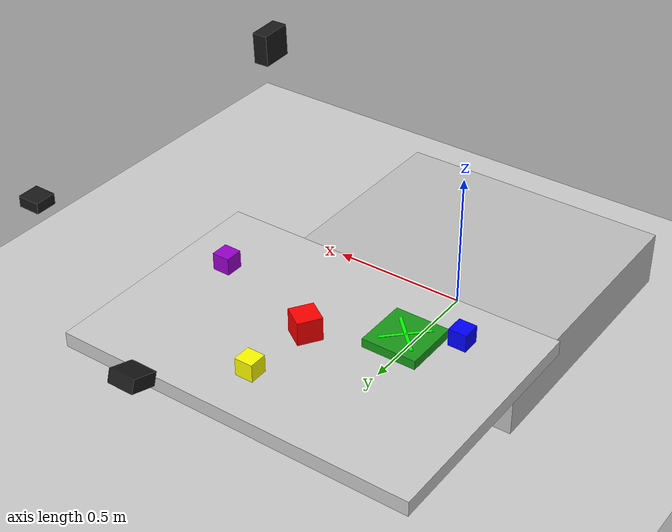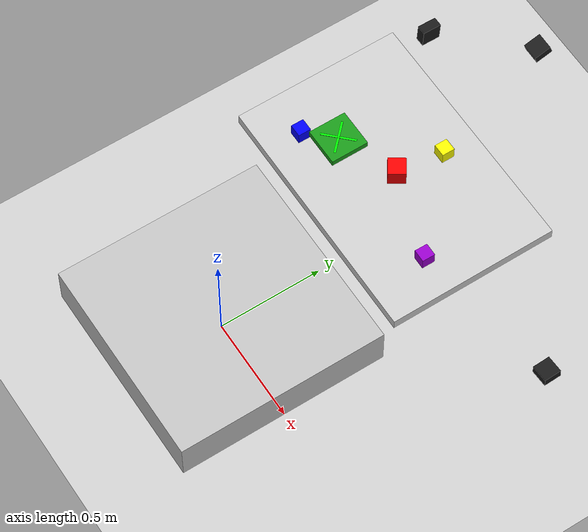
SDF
<sdf version="1.7">
 <world name="smart_arm_world">
  <gravity>0 0 -9.81</gravity>
  <light name="sun" type="directional">
   <pose>0 0 10 0 -0 0</pose>
   <diffuse>0.8 0.8 0.8 1</diffuse>
   <specular>0.2 0.2 0.2 1</specular>
   <attenuation>
    <range>1000</range>
    <constant>0.9</constant>
    <linear>0.01</linear>
    <quadratic>0.001</quadratic>
   </attenuation>
   <direction>-0.5 0.1 -0.9</direction>
   <spot><inner_angle>0</inner_angle><outer_angle>0</outer_angle><falloff>0</falloff></spot>
  </light>
  <model name="ground_plane">
   <static>1</static>
   <link name="link">
    <collision name="collision">
     <geometry><plane><normal>0 0 1</normal><size>100 100</size></plane></geometry>
    </collision>
    <visual name="visual">
     <cast_shadows>0</cast_shadows>
     <geometry><plane><normal>0 0 1</normal><size>100 100</size></plane></geometry>
     <material>
      <script><uri>file://media/materials/scripts/gazebo.material</uri><name>Gazebo/Grey</name></script>
     </material>
    </visual>
   </link>
  </model>
  <model name="robot_pedestal">
   <static>1</static>
   <link name="pedestal_link">
    <pose>0 0 0.1 0 -0 0</pose>
    <collision name="collision"><geometry><box><size>1 1 0.2</size></box></geometry></collision>
    <visual name="visual">
     <geometry><box><size>1 1 0.2</size></box></geometry>
     <material><ambient>0.55 0.55 0.55 1</ambient><diffuse>0.75 0.75 0.75 1</diffuse></material>
    </visual>
   </link>
  </model>
  <model name="work_table">
   <static>1</static>
   <link name="top">
    <pose>-0.030288 0.895696 0.4 0 -0 0</pose>
    <collision name="collision">
     <geometry><box><size>1.2 0.8 0.05</size></box></geometry>
     <surface>
      <friction><ode><mu>3</mu><mu2>3</mu2></ode></friction>
      <contact><ode><kp>1e+06</kp><kd>100</kd><max_vel>0.2</max_vel><min_depth>0.001</min_depth></ode></contact>
     </surface>
    </collision>
    <visual name="visual">
     <geometry><box><size>1.2 0.8 0.05</size></box></geometry>
     <material><ambient>0.65 0.65 0.65 1</ambient><diffuse>0.8 0.8 0.8 1</diffuse></material>
    </visual>
   </link>
  </model>
  <model name="overhead_camera_model">
   <pose>-0.203184 -0 0.232345 0 0.911775 0</pose>
   <static>1</static>
   <link name="overhead_camera_link">
    <pose>0.619308 0.874419 1.18362 0.027906 0.947704 -3.09384</pose>
    <visual name="visual">
     <geometry><box><size>0.08 0.08 0.04</size></box></geometry>
     <material><ambient>0.1 0.1 0.1 1</ambient><diffuse>0.1 0.1 0.1 1</diffuse></material>
    </visual>
    <sensor name="overhead_camera" type="camera">
     <update_rate>30</update_rate>
     <camera>
      <horizontal_fov>1.6</horizontal_fov>
      <image><width>800</width><height>600</height><format>R8G8B8</format></image>
      <clip><near>0.2</near><far>10</far></clip>
     </camera>
     <plugin name="camera_controller" filename="libgazebo_ros_camera.so">
      <alwaysOn>1</alwaysOn>
      <updateRate>30.0</updateRate>
      <cameraName>overhead_camera</cameraName>
      <imageTopicName>image_raw</imageTopicName>
      <frameName>overhead_camera_link</frameName>
     </plugin>
    </sensor>
   </link>
  </model>
  <model name="aux_left_camera_model">
   <pose>-0.078707 0.379621 0.075991 0.312216 -0.406197 -0.589734</pose>
   <static>1</static>
   <link name="aux_left_camera_link">
    <pose>0.25 0.95 1.1 0.15 1.05 -2.45</pose>
    <visual name="visual">
     <geometry><box><size>0.08 0.08 0.04</size></box></geometry>
     <material><ambient>0.1 0.1 0.1 1</ambient><diffuse>0.1 0.1 0.1 1</diffuse></material>
    </visual>
    <sensor name="aux_left_camera" type="camera">
     <update_rate>30</update_rate>
     <camera>
      <horizontal_fov>1.57</horizontal_fov>
      <image><width>800</width><height>600</height><format>R8G8B8</format></image>
      <clip><near>0.2</near><far>10</far></clip>
     </camera>
     <plugin name="aux_left_camera_controller" filename="libgazebo_ros_camera.so">
      <alwaysOn>1</alwaysOn>
      <updateRate>30.0</updateRate>
      <cameraName>aux_left_camera</cameraName>
      <imageTopicName>image_raw</imageTopicName>
      <frameName>aux_left_camera_link</frameName>
     </plugin>
    </sensor>
   </link>
  </model>
  <model name="aux_right_camera_model">
   <pose>1.22022 0.75783 -0.057078 0.563776 0.485538 2.39751</pose>
   <static>1</static>
   <link name="aux_right_camera_link">
    <pose>0.95 0.95 1.1 0.12 1.03 2.53319</pose>
    <visual name="visual">
     <geometry><box><size>0.08 0.08 0.04</size></box></geometry>
     <material><ambient>0.1 0.1 0.1 1</ambient><diffuse>0.1 0.1 0.1 1</diffuse></material>
    </visual>
    <sensor name="aux_right_camera" type="camera">
     <update_rate>30</update_rate>
     <camera>
      <horizontal_fov>1.57</horizontal_fov>
      <image><width>800</width><height>600</height><format>R8G8B8</format></image>
      <clip><near>0.2</near><far>10</far></clip>
     </camera>
     <plugin name="aux_right_camera_controller" filename="libgazebo_ros_camera.so">
      <alwaysOn>1</alwaysOn>
      <updateRate>30.0</updateRate>
      <cameraName>aux_right_camera</cameraName>
      <imageTopicName>image_raw</imageTopicName>
      <frameName>aux_right_camera_link</frameName>
     </plugin>
    </sensor>
   </link>
  </model>
  <model name="blue_cube">
   <pose>0 0 -0.001002 -0 -0 -0</pose>
   <static>0</static>
   <link name="cube_link">
    <pose>-0.403194 0.669364 0.455001 0 -0 0</pose>
    <collision name="collision">
     <geometry><box><size>0.06 0.06 0.06</size></box></geometry>
     <surface>
      <friction><ode><mu>1.5</mu><mu2>1.5</mu2></ode></friction>
      <contact><ode><kp>500000</kp><kd>50</kd><max_vel>0.1</max_vel><min_depth>0.001</min_depth></ode></contact>
     </surface>
    </collision>
    <visual name="visual">
     <geometry><box><size>0.06 0.06 0.06</size></box></geometry>
     <material><ambient>0 0 1 1</ambient><diffuse>0 0 1 1</diffuse></material>
    </visual>
    <inertial>
     <mass>0.15</mass>
     <inertia><ixx>9e-05</ixx><iyy>9e-05</iyy><izz>9e-05</izz><ixy>0</ixy><ixz>0</ixz><iyz>0</iyz></inertia>
    </inertial>
   </link>
  </model>
  <model name="yellow_cube">
   <pose>0 0 -0.001001 0 -0 0</pose>
   <static>0</static>
   <link name="cube_link">
    <pose>0.01246 1.12737 0.455 0 -0 0</pose>
    <collision name="collision">
     <geometry><box><size>0.06 0.06 0.06</size></box></geometry>
     <surface>
      <friction><ode><mu>1.5</mu><mu2>1.5</mu2></ode></friction>
      <contact><ode><kp>500000</kp><kd>50</kd><max_vel>0.1</max_vel><min_depth>0.001</min_depth></ode></contact>
     </surface>
    </collision>
    <visual name="visual">
     <geometry><box><size>0.06 0.06 0.06</size></box></geometry>
     <material><ambient>1 1 0 1</ambient><diffuse>1 1 0 1</diffuse></material>
    </visual>
    <inertial>
     <mass>0.15</mass>
     <inertia><ixx>9e-05</ixx><iyy>9e-05</iyy><izz>9e-05</izz><ixy>0</ixy><ixz>0</ixz><iyz>0</iyz></inertia>
    </inertial>
   </link>
  </model>
  <model name="purple_cube">
   <pose>-0.010357 0.004906 -0.001002 0 -0 -0.011878</pose>
   <static>0</static>
   <link name="cube_link">
    <pose>0.393889 0.766223 0.455001 0 -0 0</pose>
    <collision name="collision">
     <geometry><box><size>0.06 0.06 0.06</size></box></geometry>
     <surface>
      <friction><ode><mu>1.5</mu><mu2>1.5</mu2></ode></friction>
      <contact><ode><kp>500000</kp><kd>50</kd><max_vel>0.1</max_vel><min_depth>0.001</min_depth></ode></contact>
     </surface>
    </collision>
    <visual name="visual">
     <geometry><box><size>0.06 0.06 0.06</size></box></geometry>
     <material><ambient>0.6 0 0.8 1</ambient><diffuse>0.6 0 0.8 1</diffuse></material>
    </visual>
    <inertial>
     <mass>0.15</mass>
     <inertia><ixx>9e-05</ixx><iyy>9e-05</iyy><izz>9e-05</izz><ixy>0</ixy><ixz>0</ixz><iyz>0</iyz></inertia>
    </inertial>
   </link>
  </model>
  <model name="target_cube">
   <pose>-0.023362 0.033779 0.402474 2.55909 -1.57079 3.14159</pose>
   <static>0</static>
   <link name="cube_link">
    <pose>0.061525 0.728815 0.465001 0 -0 0</pose>
    <collision name="collision">
     <geometry><box><size>0.08 0.08 0.08</size></box></geometry>
     <surface>
      <friction><ode><mu>1.5</mu><mu2>1.5</mu2></ode></friction>
      <contact><ode><kp>1e+06</kp><kd>100</kd><max_vel>0.2</max_vel><min_depth>0.001</min_depth></ode></contact>
     </surface>
    </collision>
    <visual name="visual">
     <geometry><box><size>0.08 0.08 0.08</size></box></geometry>
     <material><ambient>1 0 0 1</ambient><diffuse>1 0 0 1</diffuse></material>
    </visual>
    <inertial>
     <mass>0.2</mass>
     <inertia>
      <ixx>0.000213</ixx>
      <iyy>0.000213</iyy>
      <izz>0.000213</izz>
      <ixy>0</ixy>
      <ixz>0</ixz>
      <iyz>0</iyz>
     </inertia>
    </inertial>
   </link>
  </model>
  <model name="cube_container">
   <static>1</static>
   <link name="container_link">
    <pose>-0.28 0.78 0.46 0 -0 0</pose>
    <collision name="collision"><geometry><box><size>0.18 0.18 0.03</size></box></geometry></collision>
    <visual name="body">
     <geometry><box><size>0.18 0.18 0.03</size></box></geometry>
     <material><ambient>0.1 0.4 0.1 1</ambient><diffuse>0.1 0.6 0.1 1</diffuse></material>
    </visual>
    <visual name="green_x_1">
     <geometry><box><size>0.16 0.01 0.001</size></box></geometry>
     <pose>0 0 0.016 0 -0 0.785398</pose>
     <material><ambient>0 1 0 1</ambient><diffuse>0 1 0 1</diffuse></material>
    </visual>
    <visual name="green_x_2">
     <geometry><box><size>0.16 0.01 0.001</size></box></geometry>
     <pose>0 0 0.016 0 0 -0.785398</pose>
     <material><ambient>0 1 0 1</ambient><diffuse>0 1 0 1</diffuse></material>
    </visual>
   </link>
  </model>
  <physics type="ode">
   <max_step_size>0.001</max_step_size>
   <real_time_factor>1</real_time_factor>
   <real_time_update_rate>1000</real_time_update_rate>
   <ode>
    <solver>
     <type>quick</type>
     <iters>100</iters>
     <sor>1.3</sor>
     <use_dynamic_moi_rescaling>0</use_dynamic_moi_rescaling>
    </solver>
    <constraints>
     <cfm>0</cfm>
     <erp>0.2</erp>
     <contact_max_correcting_vel>100</contact_max_correcting_vel>
     <contact_surface_layer>0.001</contact_surface_layer>
    </constraints>
   </ode>
  </physics>
  <scene><ambient>0.4 0.4 0.4 1</ambient><background>0.7 0.7 0.7 1</background><shadows>1</shadows></scene>
  <magnetic_field>6e-06 2.3e-05 -4.2e-05</magnetic_field>
  <atmosphere type="adiabatic"/>
  <spherical_coordinates>
   <surface_model>EARTH_WGS84</surface_model>
   <latitude_deg>0</latitude_deg>
   <longitude_deg>0</longitude_deg>
   <elevation>0</elevation>
   <heading_deg>0</heading_deg>
  </spherical_coordinates>
 </world>
</sdf>
